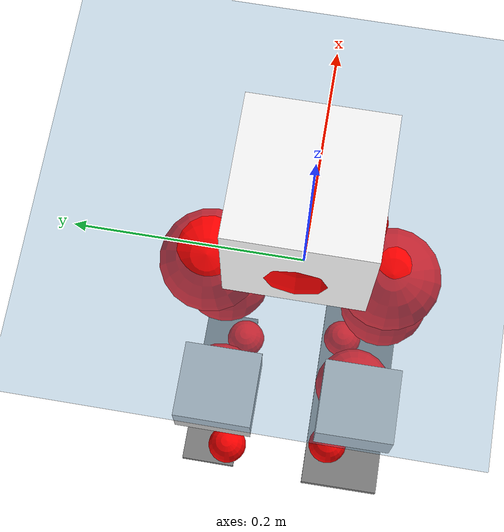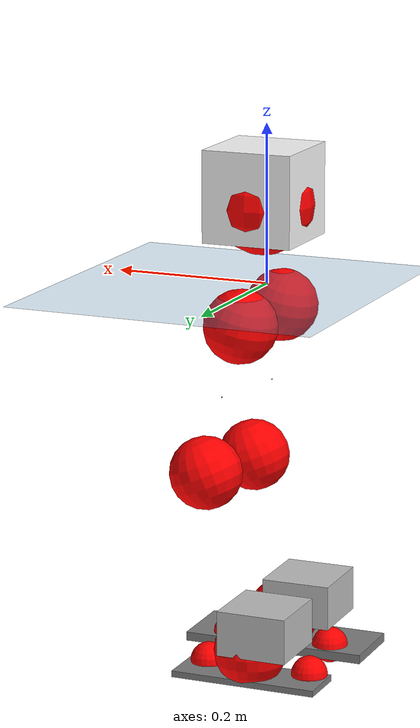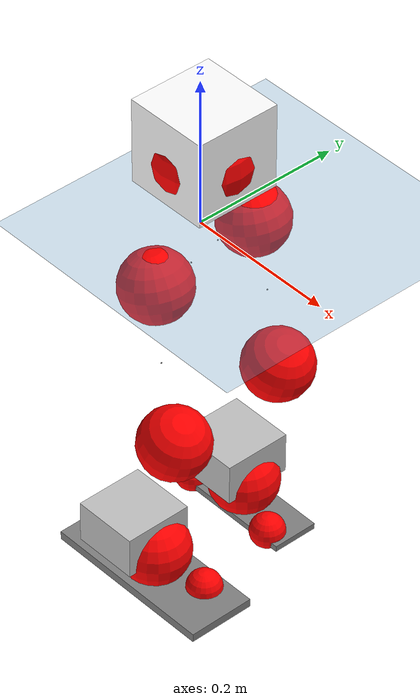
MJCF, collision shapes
<mujoco model="pi_12dof_release_v1">
  <compiler angle="radian" assetdir="assets" balanceinertia="true" inertiafromgeom="false"/>

  <option timestep="0.005" density="1.2" viscosity="2e-05"/>

  <size nkey="1"/>

  <visual>
    <quality shadowsize="8192"/>
    <map shadowclip="0.5"/>
  </visual>

  <default>
    <default class="/">
      <joint armature="0.01" damping="0.01" frictionloss="0.01"/>
      <geom contype="0" conaffinity="0" group="1" solref="-1000 -80"/>
      <site size="0.01 0.005 0.005" group="5"/>
      <general forcelimited="true" biastype="affine" gainprm="20" biasprm="0 -20 -0.5"/>
      <default class="foot">
        <geom size="0.0845 0.036 0.005" type="box" condim="6" group="4" priority="1" friction="0.9 0.2 0.2" solimp="0.015 1 0.005"/>
      </default>
      <default class="reward_collision_sphere">
        <geom group="5" rgba="1 0 0 1"/>
      </default>
    </default>
  </default>

  <asset>
    <texture type="skybox" colorspace="auto" name="//unnamed_texture_0" builtin="gradient" rgb1="0.95 0.95 0.95" rgb2="0.95 0.95 0.95" width="100" height="600"/>
    <texture type="2d" colorspace="auto" name="texplane" builtin="checker" rgb1="0.345 0.575 0.748" rgb2="0.345 0.575 0.748" markrgb="1 1 1" width="512" height="512"/>
    <material name="MatPlane" class="/" texture="texplane" texuniform="true" texrepeat="2 2" specular="0.9"/>
    <mesh name="baselink_1" class="/" file="baselink_1.STL"/>
    <mesh name="r_hip_pitch_link" class="/" file="r_hip_pitch_link.STL"/>
    <mesh name="r_hip_roll_link" class="/" file="r_hip_roll_link.STL"/>
    <mesh name="r_thigh_link" class="/" file="r_thigh_link.STL"/>
    <mesh name="r_calf_link" class="/" file="r_calf_link.STL"/>
    <mesh name="r_ankle_pitch_link" class="/" file="r_ankle_pitch_link.STL"/>
    <mesh name="r_ankle_roll_link" class="/" file="r_ankle_roll_link.STL"/>
    <mesh name="l_hip_pitch_link" class="/" file="l_hip_pitch_link.STL"/>
    <mesh name="l_hip_roll_link" class="/" file="l_hip_roll_link.STL"/>
    <mesh name="l_thigh_link" class="/" file="l_thigh_link.STL"/>
    <mesh name="l_calf_link" class="/" file="l_calf_link.STL"/>
    <mesh name="l_ankle_pitch_link" class="/" file="l_ankle_pitch_link.STL"/>
    <mesh name="l_ankle_roll_link" class="/" file="l_ankle_roll_link.STL"/>
  </asset>

  <worldbody>
    <geom name="floor" class="/" size="100 100 0.125" type="plane" group="0" material="MatPlane"/>
    <light name="toplight_shadow" class="/" pos="0 0 5" dir="0.0990148 0.0990148 -0.990148" type="directional" ambient="0.04 0.04 0.04" diffuse="0.55 0.55 0.55" specular="0.12 0.12 0.12"/>
    <light name="toplight_fill" class="/" pos="0 0 5" dir="0.0990148 0.0990148 -0.990148" type="directional" castshadow="false" ambient="0.04 0.04 0.04" diffuse="0.3 0.3 0.3" specular="0.08 0.08 0.08"/>
    <body name="trunk" pos="0.00308606 0.00225427 0.000790949" quat="0.999999 -0.000585043 0.000842062 0.000340233">
      <inertial pos="0.00348172 -0.00161137 0.0599546" quat="0.706326 -0.00279465 0.0185383 0.707639" mass="3.39637" diaginertia="0.00966774 0.00961352 0.0219775"/>
      <joint name="//unnamed_joint_0" type="free"/>
      <geom name="//unnamed_geom_1" class="/" type="mesh" density="0" rgba="1 1 1 1" mesh="baselink_1"/>
      <geom name="//unnamed_geom_2" class="/" size="0.0574827 0.0574827 0.0574827" pos="0 0 0.113677" type="box" rgba="1 1 1 1"/>
      <geom name="//unnamed_geom_3" class="reward_collision_sphere" size="0.063231" pos="0 0 0.0994671"/>
      <site name="imu" class="/" pos="-0.00654575 0.040317 -0.0034502" size="0.0114965"/>
      <camera name="track" class="/" pos="0 -2.0272 0" quat="0.707107 0.707107 0 0" mode="trackcom"/>
      <camera name="ego_camera" class="/" pos="0.0760806 0 0.255772" quat="-0.5 -0.5 0.5 0.5"/>
      <body name="r_hip_pitch_link" pos="0.00333907 -0.0222467 -0.0447952" quat="0.992102 -0.00195662 -0.125372 0.00324811">
        <inertial pos="0.00178609 -0.0573132 -0.000617744" quat="-0.0157512 0.716785 -0.0328738 0.696341" mass="0.516334" diaginertia="0.000107412 9.60608e-05 0.000437997"/>
        <joint name="r_hip_pitch_joint" class="/" pos="0 0 0" axis="0.000473553 -1 -0.00042946" stiffness="0.0281207" range="-1.72364 1.2994" armature="0.0121671" damping="0.0377059" frictionloss="0.012318"/>
        <geom name="//unnamed_geom_4" class="/" type="mesh" density="0" rgba="0.75294 0.75294 0.75294 1" mesh="r_hip_pitch_link"/>
        <geom name="//unnamed_geom_5" class="/" size="0.000574827 0.000574827 0.000574827" type="box" rgba="0.75294 0.75294 0.75294 1"/>
        <body name="r_hip_roll_link" pos="0.00396498 -0.0572703 -0.00129349" quat="1 1.80217e-05 0.000442159 0.000685955">
          <inertial pos="-0.000886367 0.00636133 -0.0784096" quat="0.710441 -0.0799638 -0.0838997 0.694147" mass="0.586905" diaginertia="0.000376779 0.000308672 0.000780043"/>
          <joint name="r_hip_roll_joint" class="/" pos="0 0 0" axis="-0.999878 0.0044121 0.0149651" stiffness="0.00569005" range="-0.0686805 0.377291" armature="0.0120009" damping="0.00100133" frictionloss="0.0109089"/>
          <geom name="//unnamed_geom_6" class="/" type="mesh" density="0" rgba="0.75294 0.75294 0.75294 1" mesh="r_hip_roll_link"/>
          <geom name="//unnamed_geom_7" class="/" size="0.000574827 0.000574827 0.000574827" type="box" rgba="0.75294 0.75294 0.75294 1"/>
          <geom name="//unnamed_geom_8" class="reward_collision_sphere" size="0.0459862"/>
          <body name="r_thigh_link" pos="-0.00847592 -0.00681178 -0.101605" quat="1 -5.51353e-05 -4.40824e-05 1.83874e-05">
            <inertial pos="-0.000738999 0.00252317 -0.0702647" quat="0.735965 0.677013 -0.00266121 -0.0012458" mass="0.159872" diaginertia="0.000130887 9.99727e-05 0.000336017"/>
            <joint name="r_thigh_joint" class="/" pos="0 0 0" axis="0.00475942 0.0094389 -0.999944" range="-0.275471 0.590021" armature="0.0127836" damping="0.0159156" frictionloss="0.0161728"/>
            <geom name="//unnamed_geom_9" class="/" type="mesh" density="0" rgba="0.75294 0.75294 0.75294 1" mesh="r_thigh_link"/>
            <geom name="//unnamed_geom_10" class="/" size="0.000574827 0.000574827 0.000574827" type="box" rgba="0.75294 0.75294 0.75294 1"/>
            <body name="r_calf_link" pos="-0.000472785 -0.00326384 -0.106764" quat="0.947626 4.37001e-06 0.319384 -3.02972e-05">
              <inertial pos="-0.00221609 0.00160865 -0.0994825" quat="0.999446 -0.00146079 -0.0282229 0.0175609" mass="1.14211" diaginertia="0.00350788 0.00343742 0.00095118"/>
              <joint name="r_calf_joint" class="/" pos="0 0 0" axis="-0.0116043 -0.999929 -0.00252751" stiffness="0.0278136" range="-1.77112 0.654517" armature="0.0139533" damping="0.0195286" frictionloss="0.0109113"/>
              <geom name="//unnamed_geom_11" class="/" type="mesh" density="0" rgba="0.75294 0.75294 0.75294 1" mesh="r_calf_link"/>
              <geom name="//unnamed_geom_12" class="/" size="0.000574827 0.000574827 0.000574827" type="box" rgba="0.75294 0.75294 0.75294 1"/>
              <geom name="//unnamed_geom_13" class="reward_collision_sphere" size="0.0459862"/>
              <body name="r_ankle_pitch_link" pos="-0.000320323 0.00303036 -0.194562" quat="0.980194 0.000117986 -0.198041 0.00015687">
                <inertial pos="0.00441765 0.00354645 0.00679473" quat="-0.0145034 0.713873 -0.0388747 0.699045" mass="0.249026" diaginertia="0.000307178 0.000218347 0.000638556"/>
                <joint name="r_ankle_pitch_joint" class="/" pos="0 0 0" axis="-0.00275966 -0.999996 -0.000333324" range="-1.31025 0.351011" armature="0.0115296" damping="0.00422626" frictionloss="0.00849428"/>
                <geom name="//unnamed_geom_14" class="/" type="mesh" density="0" rgba="0.75294 0.75294 0.75294 1" mesh="r_ankle_pitch_link"/>
                <geom name="//unnamed_geom_15" class="/" size="0.0448365 0.0459862 0.0287414" type="box" rgba="0.75294 0.75294 0.75294 1"/>
                <body name="r_ankle_roll_link" pos="0.080727 0.00741487 0.0029901" quat="1 -2.01976e-05 0.000136 -0.000101565">
                  <inertial pos="-0.0227539 0.00188176 -0.0289657" quat="0.563257 0.433044 0.43214 0.555399" mass="0.912908" diaginertia="0.00134621 0.00109929 0.00194646"/>
                  <joint name="r_ankle_roll_joint" class="/" pos="0 0 0" axis="-0.999568 0.0185155 -0.0228348" stiffness="0.00464717" range="-0.202061 0.256754" armature="0.0154806" damping="0" frictionloss="0.0122321"/>
                  <geom name="//unnamed_geom_16" class="/" type="mesh" density="0" rgba="0.75294 0.75294 0.75294 1" mesh="r_ankle_roll_link"/>
                  <geom name="//unnamed_geom_17" class="/" type="mesh" rgba="0.75294 0.75294 0.75294 1" mesh="r_ankle_roll_link"/>
                  <geom name="right_foot" class="foot" size="0.119948 0.0456355 0.00579628" pos="-0.0517348 0 -0.0625221"/>
                  <geom name="//unnamed_geom_19" class="reward_collision_sphere" size="0.0459862" pos="-0.0507204 0 -0.0284192"/>
                  <geom name="//unnamed_geom_20" class="reward_collision_sphere" size="0.0229931" pos="0.0152161 0.020272 -0.0568383"/>
                  <geom name="//unnamed_geom_21" class="reward_collision_sphere" size="0.0229931" pos="-0.121729 0.020272 -0.0568383"/>
                  <site name="right_foot" class="foot" pos="-0.0517348 0 -0.0625221" size="0.0114965"/>
                </body>
              </body>
            </body>
          </body>
        </body>
      </body>
      <body name="l_hip_pitch_link" pos="-0.00303319 0.0241576 -0.0403962" quat="0.992187 -8.7745e-05 -0.124761 -9.50407e-05">
        <inertial pos="-0.000132437 0.0521596 0.00560375" quat="-0.0321437 0.700073 0.0250832 0.712906" mass="0.532457" diaginertia="0.00012534 0.000112799 0.000581652"/>
        <joint name="l_hip_pitch_joint" class="/" pos="0 0 0" axis="-0.00821944 0.999963 -0.00248247" range="-1.31591 1.79611" armature="0.00927814" damping="0.0286754" frictionloss="0.0102124"/>
        <geom name="//unnamed_geom_22" class="/" type="mesh" density="0" rgba="0.75294 0.75294 0.75294 1" mesh="l_hip_pitch_link"/>
        <geom name="//unnamed_geom_23" class="/" size="0.000574827 0.000574827 0.000574827" type="box" rgba="0.75294 0.75294 0.75294 1"/>
        <body name="l_hip_roll_link" pos="0.00067649 0.0554444 0.00270485" quat="1 -6.61047e-05 -7.56082e-05 5.06858e-05">
          <inertial pos="0.0035942 0.00309319 -0.0784978" quat="0.683826 -0.0627867 -0.0922759 0.721058" mass="0.57543" diaginertia="0.000387805 0.000301956 0.000801422"/>
          <joint name="l_hip_roll_joint" class="/" pos="0 0 0" axis="-0.999999 0.00120509 0.000901013" range="-0.370011 0.0363872" armature="0.0121523" damping="0.0422412" frictionloss="0.0113979"/>
          <geom name="//unnamed_geom_24" class="/" type="mesh" density="0" rgba="0.75294 0.75294 0.75294 1" mesh="l_hip_roll_link"/>
          <geom name="//unnamed_geom_25" class="/" size="0.000574827 0.000574827 0.000574827" type="box" rgba="0.75294 0.75294 0.75294 1"/>
          <geom name="//unnamed_geom_26" class="reward_collision_sphere" size="0.0459862"/>
          <body name="l_thigh_link" pos="0.00198621 -0.00024449 -0.0945527" quat="1 0.000456982 0.000377671 -0.000273818">
            <inertial pos="-0.0014774 0.00059838 -0.0700657" quat="0.682968 0.730217 0.0183501 -0.000903406" mass="0.177965" diaginertia="0.000134714 0.000101198 0.000330542"/>
            <joint name="l_thigh_joint" class="/" pos="0 0 0" axis="-0.00281126 -0.000553618 -0.999996" stiffness="0.0361082" range="-0.599807 0.320577" armature="0.0118416" damping="0.00626933" frictionloss="0.0102"/>
            <geom name="//unnamed_geom_27" class="/" type="mesh" density="0" rgba="0.75294 0.75294 0.75294 1" mesh="l_thigh_link"/>
            <geom name="//unnamed_geom_28" class="/" size="0.000574827 0.000574827 0.000574827" type="box" rgba="0.75294 0.75294 0.75294 1"/>
            <body name="l_calf_link" pos="-0.00276272 -0.00150346 -0.101429" quat="0.947643 2.98841e-05 0.319332 0.000185451">
              <inertial pos="0.000149264 -0.00180064 -0.0961644" quat="0.999979 0.00438469 -0.00127247 0.0045545" mass="1.34962" diaginertia="0.00402122 0.00398607 0.00109976"/>
              <joint name="l_calf_joint" class="/" pos="0 0 0" axis="-0.00571168 0.999984 -0.000229664" stiffness="0.00892852" range="-0.804011 1.53366" armature="0.0115121" damping="0.00978506" frictionloss="0.0120229"/>
              <geom name="//unnamed_geom_29" class="/" type="mesh" density="0" rgba="0.75294 0.75294 0.75294 1" mesh="l_calf_link"/>
              <geom name="//unnamed_geom_30" class="/" size="0.000574827 0.000574827 0.000574827" type="box" rgba="0.75294 0.75294 0.75294 1"/>
              <geom name="//unnamed_geom_31" class="reward_collision_sphere" size="0.0459862"/>
              <body name="l_ankle_pitch_link" pos="0.00129775 0.000737371 -0.205797" quat="0.980155 -0.000191776 -0.198234 -8.1964e-05">
                <inertial pos="0.00668704 -0.0039591 0.00084392" quat="0.000788984 0.708047 0.00097282 0.706164" mass="0.298141" diaginertia="0.000347961 0.00024387 0.000693455"/>
                <joint name="l_ankle_pitch_joint" class="/" pos="0 0 0" axis="-0.00258679 0.99998 -0.00569513" range="-0.387297 1.26914" armature="0.0136843" damping="0" frictionloss="0.0125835"/>
                <geom name="//unnamed_geom_32" class="/" type="mesh" density="0" rgba="0.75294 0.75294 0.75294 1" mesh="l_ankle_pitch_link"/>
                <geom name="//unnamed_geom_33" class="/" size="0.0448365 0.0459862 0.0287414" type="box" rgba="0.75294 0.75294 0.75294 1"/>
                <body name="l_ankle_roll_link" pos="0.0693992 0.00135399 -0.00383249" quat="0.999999 -0.00078527 0.000348982 -0.000782623">
                  <inertial pos="-0.024404 0.000283198 -0.0201861" quat="0.550885 0.436075 0.435901 0.562455" mass="0.849761" diaginertia="0.00122381 0.00110849 0.00173392"/>
                  <joint name="l_ankle_roll_joint" class="/" pos="0 0 0" axis="-0.999988 -0.00404854 -0.00275711" stiffness="0.000985281" range="-0.138202 0.156395" armature="0.00938591" damping="0.00293799" frictionloss="0.0114325"/>
                  <geom name="//unnamed_geom_34" class="/" type="mesh" density="0" rgba="0.75294 0.75294 0.75294 1" mesh="l_ankle_roll_link"/>
                  <geom name="//unnamed_geom_35" class="/" type="mesh" rgba="0.75294 0.75294 0.75294 1" mesh="l_ankle_roll_link"/>
                  <geom name="left_foot" class="foot" size="0.0948869 0.0314036 0.00404538" pos="-0.0517348 0 -0.0625221"/>
                  <geom name="//unnamed_geom_37" class="reward_collision_sphere" size="0.0459862" pos="-0.0507204 0 -0.0284192"/>
                  <geom name="//unnamed_geom_38" class="reward_collision_sphere" size="0.0229931" pos="0.0152161 -0.020272 -0.0568383"/>
                  <geom name="//unnamed_geom_39" class="reward_collision_sphere" size="0.0229931" pos="-0.121729 -0.020272 -0.0568383"/>
                  <site name="left_foot" class="foot" pos="-0.0517348 0 -0.0625221" size="0.0114965"/>
                </body>
              </body>
            </body>
          </body>
        </body>
      </body>
    </body>
  </worldbody>

  <contact>
    <pair class="/" geom1="floor" geom2="right_foot" name="//unnamed_contact_1"/>
    <pair class="/" geom1="floor" geom2="left_foot" name="//unnamed_contact_0"/>
  </contact>

  <actuator>
    <general name="r_hip_pitch_joint" class="/" joint="r_hip_pitch_joint" forcerange="-24.1665 24.1665" gainprm="22.8457" biasprm="0 -22.8457 -0.630535"/>
    <general name="r_hip_roll_joint" class="/" joint="r_hip_roll_joint" forcerange="-29.0976 29.0976" gainprm="22.8457" biasprm="0 -22.8457 -0.630535"/>
    <general name="r_thigh_joint" class="/" joint="r_thigh_joint" forcerange="-23.3285 23.3285" gainprm="22.8457" biasprm="0 -22.8457 -0.630535"/>
    <general name="r_calf_joint" class="/" joint="r_calf_joint" forcerange="-23.1451 23.1451" gainprm="22.8457" biasprm="0 -22.8457 -0.630535"/>
    <general name="r_ankle_pitch_joint" class="/" joint="r_ankle_pitch_joint" forcerange="-24.6717 24.6717" gainprm="22.8457" biasprm="0 -22.8457 -0.630535"/>
    <general name="r_ankle_roll_joint" class="/" joint="r_ankle_roll_joint" forcerange="-23.0098 23.0098" gainprm="22.8457" biasprm="0 -22.8457 -0.630535"/>
    <general name="l_hip_pitch_joint" class="/" joint="l_hip_pitch_joint" forcerange="-26.3648 26.3648" gainprm="22.8457" biasprm="0 -22.8457 -0.630535"/>
    <general name="l_hip_roll_joint" class="/" joint="l_hip_roll_joint" forcerange="-19.7309 19.7309" gainprm="22.8457" biasprm="0 -22.8457 -0.630535"/>
    <general name="l_thigh_joint" class="/" joint="l_thigh_joint" forcerange="-29.5228 29.5228" gainprm="22.8457" biasprm="0 -22.8457 -0.630535"/>
    <general name="l_calf_joint" class="/" joint="l_calf_joint" forcerange="-26.1949 26.1949" gainprm="22.8457" biasprm="0 -22.8457 -0.630535"/>
    <general name="l_ankle_pitch_joint" class="/" joint="l_ankle_pitch_joint" forcerange="-22.457 22.457" gainprm="22.8457" biasprm="0 -22.8457 -0.630535"/>
    <general name="l_ankle_roll_joint" class="/" joint="l_ankle_roll_joint" forcerange="-16.4963 16.4963" gainprm="22.8457" biasprm="0 -22.8457 -0.630535"/>
  </actuator>

  <sensor>
    <gyro site="imu" name="imu_angular_velocity"/>
    <velocimeter site="imu" name="imu_linear_velocity"/>
    <framelinvel objtype="site" objname="left_foot" name="left_foot_global_linear_velocity"/>
    <framelinvel objtype="site" objname="right_foot" name="right_foot_global_linear_velocity"/>
  </sensor>

  <keyframe>
    <key name="home" qpos="0 0 0.291 1 0 0 0 0.4 0 0 -0.8 0.4 0 -0.4 0 0 0.8 -0.4 0"/>
  </keyframe>
</mujoco>
